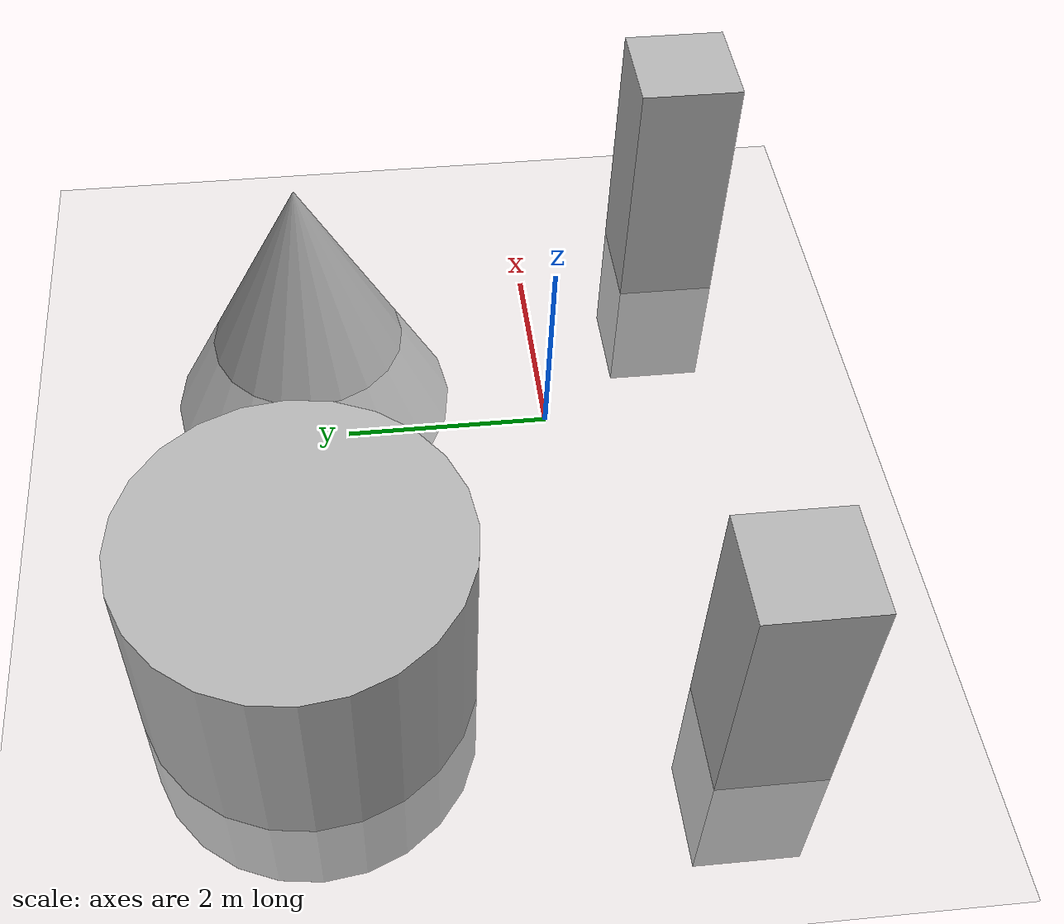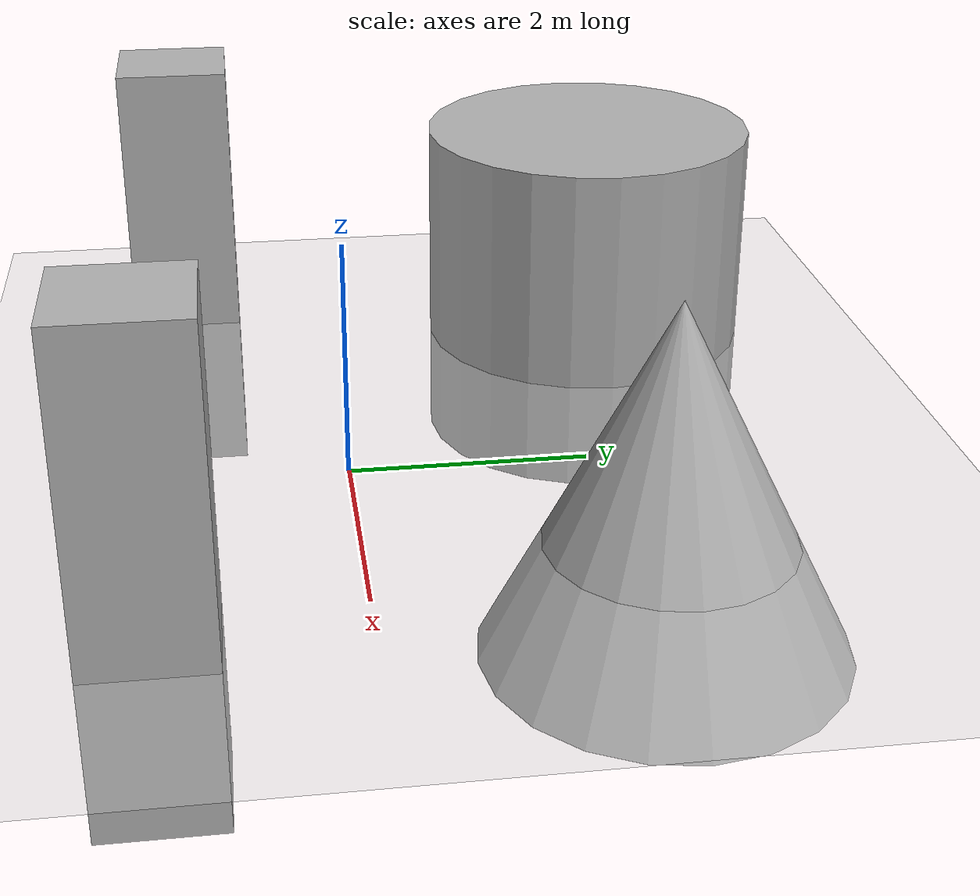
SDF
<?xml version="1.0"?>
<sdf version="1.6">
  <world name="default">

    <physics name="1ms" type="ignored">
      <max_step_size>0.001</max_step_size>
      <real_time_factor>1.0</real_time_factor>
    </physics>
    <plugin filename="ignition-gazebo-physics-system" name="ignition::gazebo::systems::Physics"></plugin>
    <plugin filename="ignition-gazebo-user-commands-system" name="ignition::gazebo::systems::UserCommands"></plugin>
    <plugin filename="ignition-gazebo-scene-broadcaster-system" name="ignition::gazebo::systems::SceneBroadcaster"></plugin>
    <plugin filename="ignition-gazebo-imu-system" name="ignition::gazebo::systems::Imu"></plugin>
    <plugin filename="ignition-gazebo-sensors-system" name="ignition::gazebo::systems::Sensors">
      <render_engine>ogre</render_engine>
    </plugin>

    <scene>
      <shadows>false</shadows>
    </scene>

    <light type="directional" name="sun">
      <cast_shadows>true</cast_shadows>
      <pose>0 0 10 0 0 0</pose>
      <diffuse>0.8 0.8 0.8 1</diffuse>
      <specular>0.2 0.2 0.2 1</specular>
      <attenuation>
        <range>1000</range>
        <constant>0.9</constant>
        <linear>0.01</linear>
        <quadratic>0.001</quadratic>
      </attenuation>
      <direction>-0.5 0.1 -0.9</direction>
    </light>

    <model name="ground_plane">
      <static>true</static>
      <link name="link">
        <collision name="collision">
          <geometry>
            <plane>
              <normal>0 0 1</normal>
              <size>1000 1000</size>
            </plane>
          </geometry>
        </collision>
        <visual name="visual">
          <geometry>
            <plane>
              <normal>0 0 1</normal>
              <size>1000 1000</size>
            </plane>
          </geometry>
          <material>
            <ambient>0.8 0.8 0.8 1</ambient>
            <diffuse>0.8 0.8 0.8 1</diffuse>
            <specular>0.8 0.8 0.8 1</specular>
          </material>
        </visual>
      </link>
    </model>
    <model name='box'>
      <pose>2.25 -1.57 0.62 0 0 0</pose>
      <link name='box_link'>
        <inertial>
          <inertia>
            <ixx>0.16666</ixx>
            <ixy>0</ixy>
            <ixz>0</ixz>
            <iyy>0.16666</iyy>
            <iyz>0</iyz>
            <izz>0.16666</izz>
          </inertia>
          <mass>1</mass>
          <pose>0 0 0 0 0 0</pose>
        </inertial>
        <collision name='box_collision'>
          <geometry>
            <box>
              <size>1 1 4</size>
            </box>
          </geometry>
          <surface>
            <friction>
              <ode/>
            </friction>
            <bounce/>
            <contact/>
          </surface>
        </collision>
        <visual name='box_visual'>
          <geometry>
            <box>
              <size>1 1 4</size>
            </box>
          </geometry>
          <material>
            <ambient>0.300000012 0.300000012 0.300000012 1</ambient>
            <diffuse>0.699999988 0.699999988 0.699999988 1</diffuse>
            <specular>1 1 1 1</specular>
          </material>
        </visual>
        <pose>0 0 0 0 0 0</pose>
        <enable_wind>false</enable_wind>
      </link>
      <static>false</static>
      <self_collide>false</self_collide>
    </model>
    <model name='box_1'>
      <pose>-3.7335845841922533 -1.3400999500748338 0.5 0 0 0</pose>
      <link name='box_link'>
        <inertial>
          <inertia>
            <ixx>0.16666</ixx>
            <ixy>0</ixy>
            <ixz>0</ixz>
            <iyy>0.16666</iyy>
            <iyz>0</iyz>
            <izz>0.16666</izz>
          </inertia>
          <mass>1</mass>
        </inertial>
        <collision name='box_collision'>
          <geometry>
            <box>
              <size>1 1 4</size>
            </box>
          </geometry>
          <surface>
            <friction>
              <ode/>
            </friction>
            <bounce/>
            <contact/>
          </surface>
        </collision>
        <visual name='box_visual'>
          <geometry>
            <box>
              <size>1 1 4</size>
            </box>
          </geometry>
          <material>
            <ambient>0.300000012 0.300000012 0.300000012 1</ambient>
            <diffuse>0.699999988 0.699999988 0.699999988 1</diffuse>
            <specular>1 1 1 1</specular>
          </material>
        </visual>
      </link>
      <static>false</static>
      <self_collide>false</self_collide>
    </model>
    <model name='cylinder'>
      <pose>-2.7780593467150525 2.5086357972252231 0.5 0 0 0</pose>
      <link name='cylinder_link'>
        <inertial>
          <inertia>
            <ixx>0.14580000000000001</ixx>
            <ixy>0</ixy>
            <ixz>0</ixz>
            <iyy>0.14580000000000001</iyy>
            <iyz>0</iyz>
            <izz>0.125</izz>
          </inertia>
          <mass>1</mass>
          <pose>0 0 0 0 0 0</pose>
        </inertial>
        <collision name='cylinder_collision'>
          <geometry>
            <cylinder>
              <radius>1.5</radius>
              <length>3</length>
            </cylinder>
          </geometry>
          <surface>
            <friction>
              <ode/>
            </friction>
            <bounce/>
            <contact/>
          </surface>
        </collision>
        <visual name='cylinder_visual'>
          <geometry>
            <cylinder>
              <radius>1.5</radius>
              <length>3</length>
            </cylinder>
          </geometry>
          <material>
            <ambient>0.300000012 0.300000012 0.300000012 1</ambient>
            <diffuse>0.699999988 0.699999988 0.699999988 1</diffuse>
            <specular>1 1 1 1</specular>
          </material>
        </visual>
        <pose>0 0 0 0 0 0</pose>
        <enable_wind>false</enable_wind>
      </link>
      <static>false</static>
      <self_collide>false</self_collide>
    </model>
    <model name='cone'>
      <pose>1.4370074815736205 2.3714871356542813 0.5 0 0 0</pose>
      <link name='cone_link'>
        <inertial>
          <inertia>
            <ixx>0.074999999999999997</ixx>
            <ixy>0</ixy>
            <ixz>0</ixz>
            <iyy>0.074999999999999997</iyy>
            <iyz>0</iyz>
            <izz>0.074999999999999997</izz>
          </inertia>
          <mass>1</mass>
          <pose>0 0 0 0 0 0</pose>
        </inertial>
        <collision name='cone_collision'>
          <geometry>
            <cone>
              <radius>1.5</radius>
              <length>3</length>
            </cone>
          </geometry>
          <surface>
            <friction>
              <ode/>
            </friction>
            <bounce/>
            <contact/>
          </surface>
        </collision>
        <visual name='cone_visual'>
          <geometry>
            <cone>
              <radius>1.5</radius>
              <length>3</length>
            </cone>
          </geometry>
          <material>
            <ambient>0.300000012 0.300000012 0.300000012 1</ambient>
            <diffuse>0.699999988 0.699999988 0.699999988 1</diffuse>
            <specular>1 1 1 1</specular>
          </material>
        </visual>
        <pose>0 0 0 0 0 0</pose>
        <enable_wind>false</enable_wind>
      </link>
      <static>false</static>
      <self_collide>false</self_collide>
    </model>

  </world>
</sdf>
